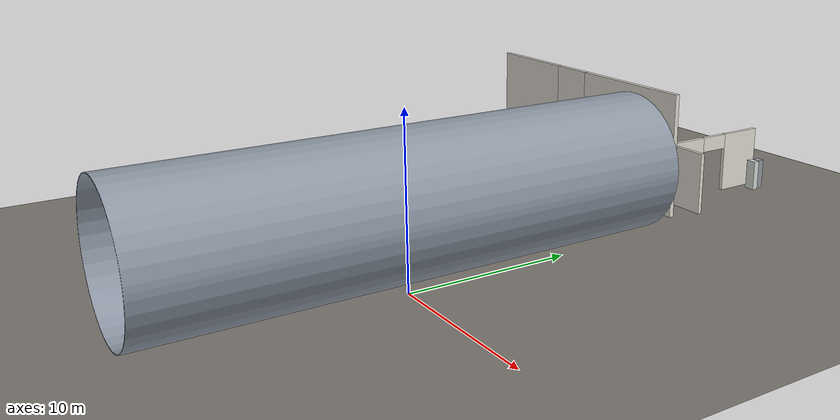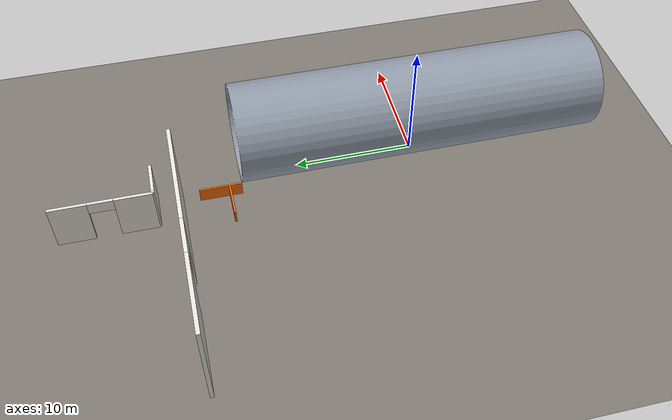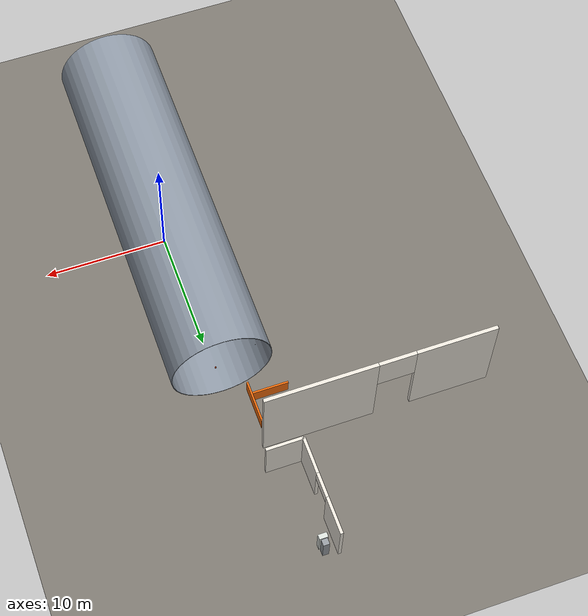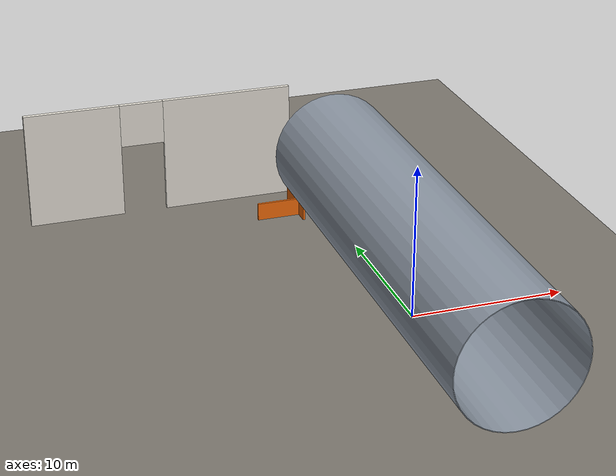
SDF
<sdf version="1.7">
 <world name="wind_tower_world">
  <model name="ground_plane">
   <static>true</static>
   <link name="link">
    <collision name="collision">
     <geometry><plane><normal>0 0 1</normal><size>200 200</size></plane></geometry>
     <surface>
      <friction><ode><mu>0.8</mu><mu2>0.8</mu2></ode></friction>
      <contact><ode><kp>500000</kp><kd>100</kd><max_vel>0.5</max_vel><min_depth>0.002</min_depth></ode></contact>
     </surface>
    </collision>
    <visual name="visual">
     <geometry><plane><normal>0 0 1</normal><size>200 200</size></plane></geometry>
     <material>
      <ambient>0.38 0.37 0.35 1</ambient>
      <diffuse>0.48 0.46 0.43 1</diffuse>
      <specular>0.05 0.05 0.05 1</specular>
     </material>
    </visual>
   </link>
  </model>
  <model name="sep_north_LW">
   <static>true</static>
   <pose>-16.75 20 4 0 0 0</pose>
   <link name="link">
    <collision name="col"><geometry><box><size>6.5 0.3 8</size></box></geometry></collision>
    <visual name="vis">
     <geometry><box><size>6.5 0.3 8</size></box></geometry>
     <material>
      <ambient>0.86 0.84 0.80 1</ambient>
      <diffuse>0.90 0.88 0.84 1</diffuse>
      <specular>0.04 0.04 0.04 1</specular>
     </material>
    </visual>
   </link>
  </model>
  <model name="sep_north_LM">
   <static>true</static>
   <pose>-6.0 20 4 0 0 0</pose>
   <link name="link">
    <collision name="col"><geometry><box><size>9.0 0.3 8</size></box></geometry></collision>
    <visual name="vis">
     <geometry><box><size>9.0 0.3 8</size></box></geometry>
     <material>
      <ambient>0.86 0.84 0.80 1</ambient>
      <diffuse>0.90 0.88 0.84 1</diffuse>
      <specular>0.04 0.04 0.04 1</specular>
     </material>
    </visual>
   </link>
  </model>
  <model name="sep_north_lintel_L">
   <static>true</static>
   <pose>-12 20 6.5 0 0 0</pose>
   <link name="link">
    <collision name="col"><geometry><box><size>3.0 0.3 3.0</size></box></geometry></collision>
    <visual name="vis">
     <geometry><box><size>3.0 0.3 3.0</size></box></geometry>
     <material><ambient>0.86 0.84 0.80 1</ambient><diffuse>0.90 0.88 0.84 1</diffuse></material>
    </visual>
   </link>
  </model>
  <model name="charge_front_L">
   <static>true</static>
   <pose>-2.5 22 2 0 0 0</pose>
   <link name="link">
    <collision name="col"><geometry><box><size>3.0 0.25 4</size></box></geometry></collision>
    <visual name="vis">
     <geometry><box><size>3.0 0.25 4</size></box></geometry>
     <material><ambient>0.86 0.84 0.80 1</ambient><diffuse>0.90 0.88 0.84 1</diffuse></material>
    </visual>
   </link>
  </model>
  <model name="charge_wall_W_N">
   <static>true</static>
   <pose>-4 28.5 2 0 0 0</pose>
   <link name="link">
    <collision name="col"><geometry><box><size>0.25 3 4</size></box></geometry></collision>
    <visual name="vis">
     <geometry><box><size>0.25 3 4</size></box></geometry>
     <material><ambient>0.86 0.84 0.80 1</ambient><diffuse>0.90 0.88 0.84 1</diffuse></material>
    </visual>
   </link>
  </model>
  <model name="charge_wall_W_lintel">
   <static>true</static>
   <pose>-4 26 3.5 0 0 0</pose>
   <link name="link">
    <collision name="col"><geometry><box><size>0.25 2 1</size></box></geometry></collision>
    <visual name="vis">
     <geometry><box><size>0.25 2 1</size></box></geometry>
     <material><ambient>0.86 0.84 0.80 1</ambient><diffuse>0.90 0.88 0.84 1</diffuse></material>
    </visual>
   </link>
  </model>
  <model name="charge_wall_W_S">
   <static>true</static>
   <pose>-4 23.5 2 0 0 0</pose>
   <link name="link">
    <collision name="col"><geometry><box><size>0.25 3 4</size></box></geometry></collision>
    <visual name="vis">
     <geometry><box><size>0.25 3 4</size></box></geometry>
     <material><ambient>0.86 0.84 0.80 1</ambient><diffuse>0.90 0.88 0.84 1</diffuse></material>
    </visual>
   </link>
  </model>
  <model name="electric_cabinet">
   <static>true</static>
   <pose>-3 29 1.0 0 0 0</pose>
   <link name="link">
    <collision name="col"><geometry><box><size>0.7 0.4 2.0</size></box></geometry></collision>
    <visual name="vis">
     <geometry><box><size>0.7 0.4 2.0</size></box></geometry>
     <material>
      <ambient>0.78 0.80 0.78 1</ambient>
      <diffuse>0.84 0.86 0.84 1</diffuse>
      <specular>0.15 0.15 0.15 1</specular>
     </material>
    </visual>
   </link>
  </model>
  <model name="shelf_storage">
   <static>true</static>
   <pose>-3 29.5 1.0 0 0 0</pose>
   <link name="link">
    <collision name="col"><geometry><box><size>0.5 0.5 2.0</size></box></geometry></collision>
    <visual name="vis">
     <geometry><box><size>0.5 0.5 2.0</size></box></geometry>
     <material>
      <ambient>0.50 0.52 0.54 1</ambient>
      <diffuse>0.58 0.60 0.62 1</diffuse>
      <specular>0.20 0.20 0.20 1</specular>
     </material>
    </visual>
   </link>
  </model>
  <model name="wind_tower_tube">
   <static>false</static>
   <pose>-4 15 1 1.5708 0 0</pose>
   <link name="tube_link">
    <inertial>
     <mass>2000</mass>
     <inertia><ixx>155000</ixx><ixy>0</ixy><ixz>0</ixz><iyy>155000</iyy><iyz>0</iyz><izz>32000</izz></inertia>
    </inertial>
    <visual name="visual">
     <geometry><mesh><uri>model://TRAMO_TORRE.STL</uri><scale>0.001 0.001 0.001</scale></mesh></geometry>
     <material>
      <ambient>0.48 0.52 0.56 1</ambient>
      <diffuse>0.55 0.59 0.64 1</diffuse>
      <specular>0.35 0.35 0.35 1</specular>
     </material>
    </visual>
    <collision name="collision">
     <geometry><mesh><uri>model://TRAMO_TORRE.STL</uri><scale>0.001 0.001 0.001</scale></mesh></geometry>
    </collision>
   </link>
   <joint name="turner_joint" type="revolute">
    <parent>world</parent>
    <child>tube_link</child>
    <pose>4.0 4.0 0 0 0 0</pose>
    <axis>
     <xyz expressed_in="__model__">0 0 1</xyz>
     <limit><lower>-1e16</lower><upper>1e16</upper></limit>
     <dynamics><damping>2.0</damping><friction>0.1</friction></dynamics>
    </axis>
   </joint>
   <plugin filename="gz-sim-joint-controller-system" name="gz::sim::systems::JointController">
    <joint_name>turner_joint</joint_name>
    <use_force_commands>false</use_force_commands>
    <initial_velocity>0.0</initial_velocity>
   </plugin>
   <plugin filename="gz-sim-joint-state-publisher-system" name="gz::sim::systems::JointStatePublisher"/>
  </model>
  <model name="barrier_north_L">
   <static>true</static>
   <pose>-3.5 16 0.6 0 0 0</pose>
   <link name="link">
    <collision name="col"><geometry><box><size>3.0 0.15 1.2</size></box></geometry></collision>
    <visual name="vis">
     <geometry><box><size>3.0 0.15 1.2</size></box></geometry>
     <material>
      <ambient>0.85 0.35 0.03 1</ambient>
      <diffuse>0.95 0.42 0.04 1</diffuse>
      <specular>0.25 0.25 0.25 1</specular>
     </material>
    </visual>
   </link>
  </model>
  <model name="barrier_ramp_W">
   <static>true</static>
   <pose>-2.0 16.75 0.6 0 0 0</pose>
   <link name="link">
    <collision name="col"><geometry><box><size>0.15 3.5 1.2</size></box></geometry></collision>
    <visual name="vis">
     <geometry><box><size>0.15 3.5 1.2</size></box></geometry>
     <material>
      <ambient>0.85 0.35 0.03 1</ambient>
      <diffuse>0.95 0.42 0.04 1</diffuse>
      <specular>0.25 0.25 0.25 1</specular>
     </material>
    </visual>
   </link>
  </model>
  <model name="defect_0021_rust">
   <static>true</static>
   <pose>-0.231350 12.935978 8.860528 0 0 0</pose>
   <link name="link">
    <visual name="visual">
     <geometry><sphere><radius>0.05755</radius></sphere></geometry>
     <material>
      <ambient>0.55 0.18 0.05 1</ambient>
      <diffuse>0.55 0.18 0.05 1</diffuse>
      <specular>0.1 0.1 0.1 1</specular>
     </material>
     <cast_shadows>false</cast_shadows>
    </visual>
    <collision name="collision">
     <geometry><sphere><radius>0.05755</radius></sphere></geometry>
     <surface><contact><collide_bitmask>0</collide_bitmask></contact></surface>
    </collision>
   </link>
  </model>
  <model name="defect_0037_rust">
   <static>true</static>
   <pose>-3.121117 12.873883 7.271280 0 0 0</pose>
   <link name="link">
    <visual name="visual">
     <geometry><sphere><radius>0.06494</radius></sphere></geometry>
     <material>
      <ambient>0.55 0.18 0.05 1</ambient>
      <diffuse>0.55 0.18 0.05 1</diffuse>
      <specular>0.1 0.1 0.1 1</specular>
     </material>
     <cast_shadows>false</cast_shadows>
    </visual>
    <collision name="collision">
     <geometry><sphere><radius>0.06494</radius></sphere></geometry>
     <surface><contact><collide_bitmask>0</collide_bitmask></contact></surface>
    </collision>
   </link>
  </model>
  <model name="defect_0049_pitting">
   <static>true</static>
   <pose>-3.346992 12.981344 2.991314 0 0 0</pose>
   <link name="link">
    <visual name="visual">
     <geometry><sphere><radius>0.02152</radius></sphere></geometry>
     <material>
      <ambient>0.15 0.15 0.15 1</ambient>
      <diffuse>0.15 0.15 0.15 1</diffuse>
      <specular>0.1 0.1 0.1 1</specular>
     </material>
     <cast_shadows>false</cast_shadows>
    </visual>
    <collision name="collision">
     <geometry><sphere><radius>0.02152</radius></sphere></geometry>
     <surface><contact><collide_bitmask>0</collide_bitmask></contact></surface>
    </collision>
   </link>
  </model>
  <model name="defect_0063_rust">
   <static>true</static>
   <pose>-0.094378 12.959815 1.152820 0 0 0</pose>
   <link name="link">
    <visual name="visual">
     <geometry><sphere><radius>0.07666</radius></sphere></geometry>
     <material>
      <ambient>0.55 0.18 0.05 1</ambient>
      <diffuse>0.55 0.18 0.05 1</diffuse>
      <specular>0.1 0.1 0.1 1</specular>
     </material>
     <cast_shadows>false</cast_shadows>
    </visual>
    <collision name="collision">
     <geometry><sphere><radius>0.07666</radius></sphere></geometry>
     <surface><contact><collide_bitmask>0</collide_bitmask></contact></surface>
    </collision>
   </link>
  </model>
 </world>
</sdf>
